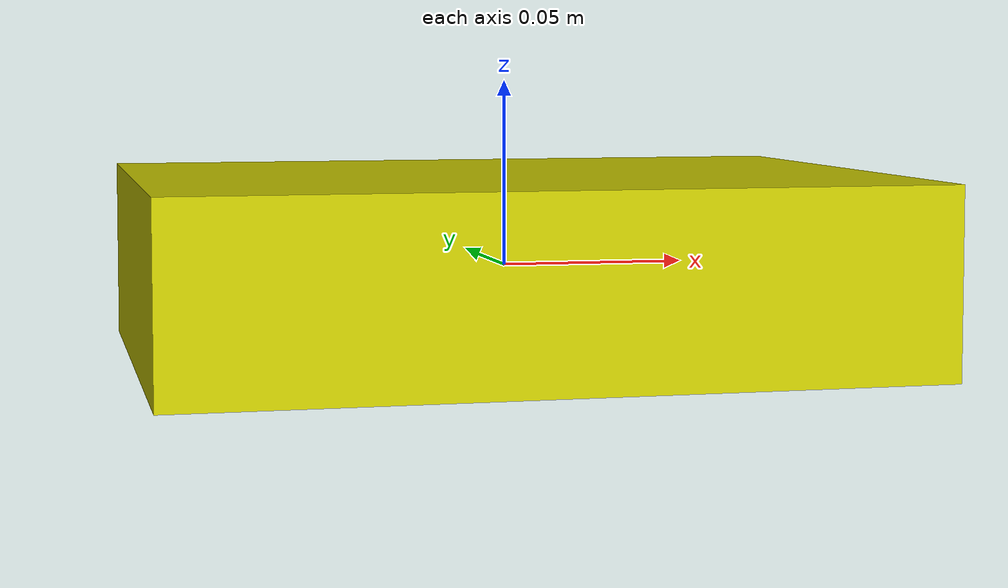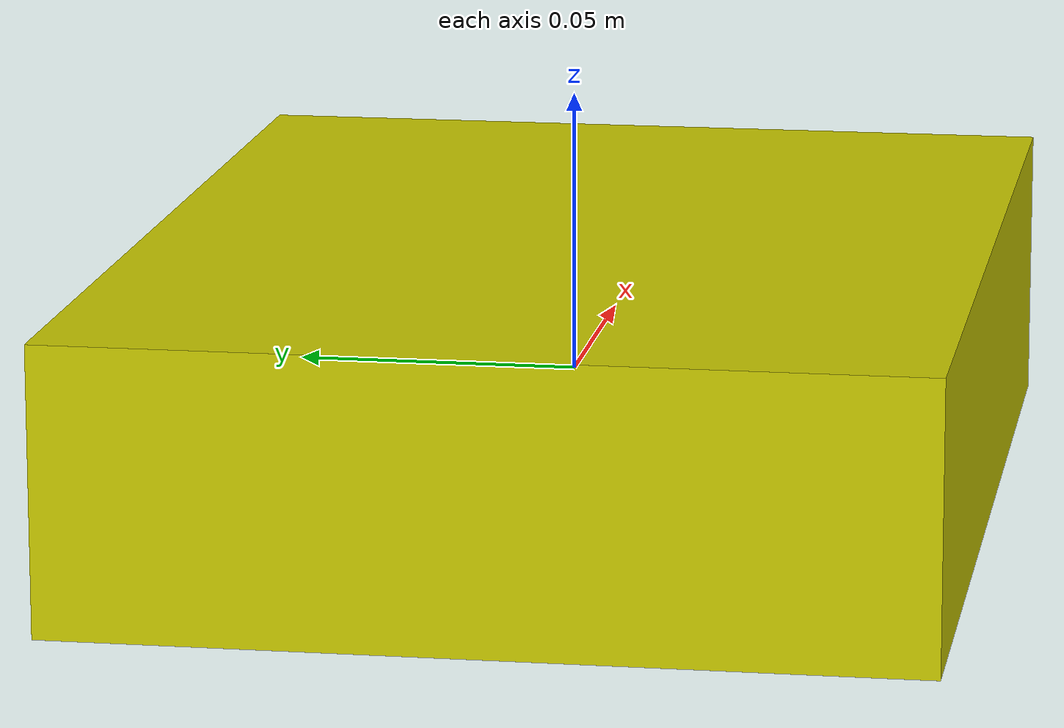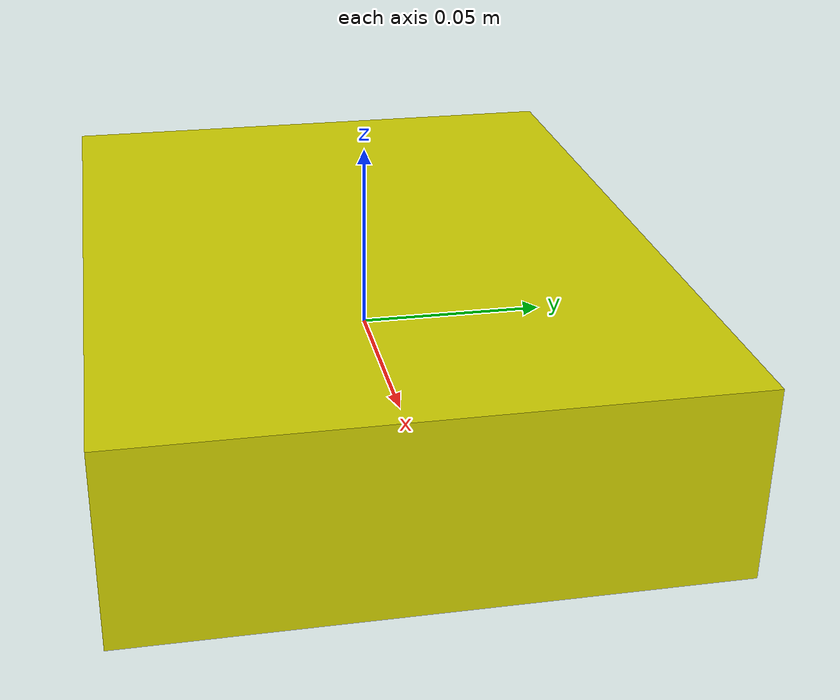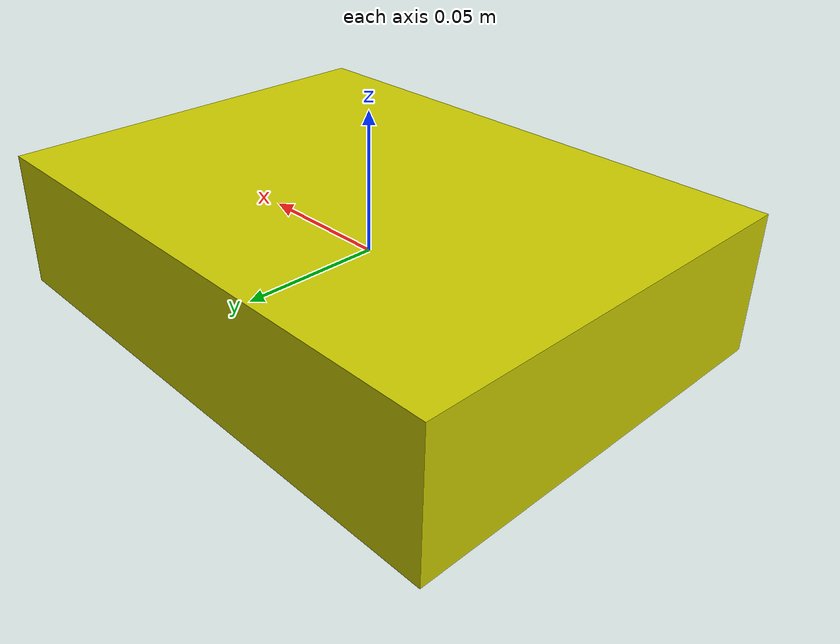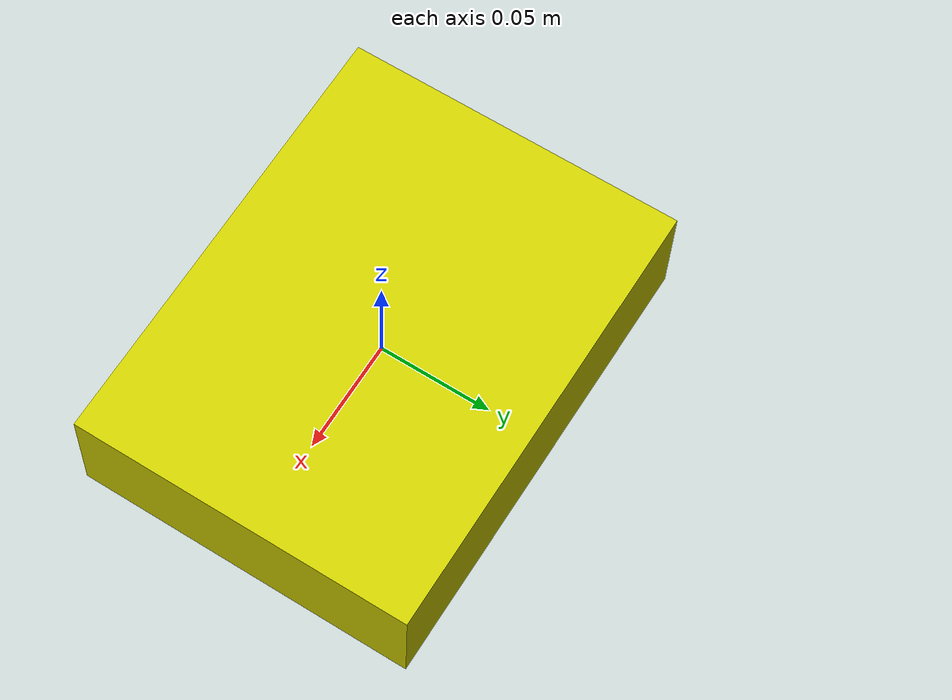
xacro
<?xml version="1.0"?>
<robot xmlns:xacro="http://www.ros.org/wiki/xacro"  name="test_robot">
    <xacro:include filename="macros.xacro" />

    <xacro:property name="chassis_width" value="0.15" />
    <xacro:property name="chassis_length" value="0.2" />
    <xacro:property name="chassis_height" value="0.05" />
    <xacro:property name="chassis_mass" value="0.5" />

    <material name="Yellow">
        <color rgba="0.8 0.8 0.0 1.0" />
    </material>

    <link name="base_footprint"/>

    <joint name="base_joint" type="fixed">
        <origin xyz="0 0 0" rpy="0 0 0" />
        <parent link="base_footprint" />
        <child link="base_link" />
    </joint>

    <link name="base_link">

        <xacro:box_inertial name="base_link" m="${chassis_mass}" x="${chassis_length}" y="${chassis_width}" z="${chassis_height}" />

        <collision name="chassis_collision">

            <geometry>

                <box size="${chassis_length} ${chassis_width} ${chassis_height}" />

            </geometry>

        </collision>

        <visual name="base_link_visual">

            <origin xyz="0 0 0" rpy=" 0 0 0" />

            <geometry>

                <box size="${chassis_length} ${chassis_width} ${chassis_height}" />

            </geometry>

            <material name="Yellow"/>

        </visual>

    </link>

</robot>
